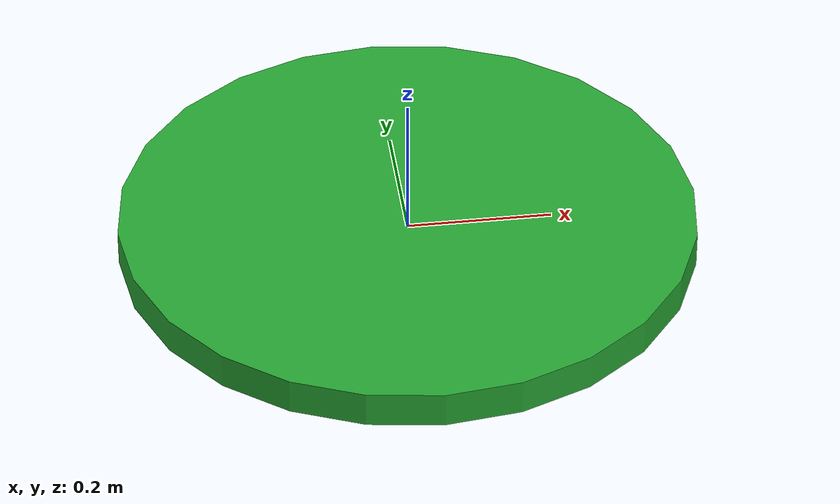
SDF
<?xml version="1.0" ?>
<sdf version="1.6">
  <model name="start_marker">
    <static>true</static>
    <link name="link">
      <visual name="visual">
        <geometry>
          <cylinder>
            <radius>0.4</radius>
            <length>0.05</length>
          </cylinder>
        </geometry>
        <material>
          <script>
            <uri>file://media/materials/scripts/gazebo.material</uri>
            <name>Gazebo/Green</name>
          </script>
        </material>
      </visual>
    </link>
  </model>
</sdf>
